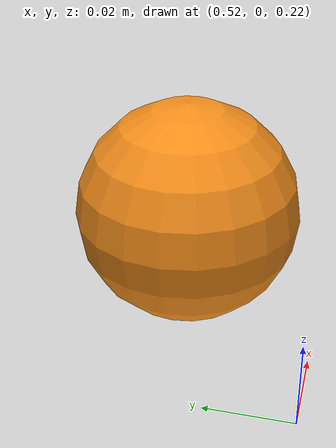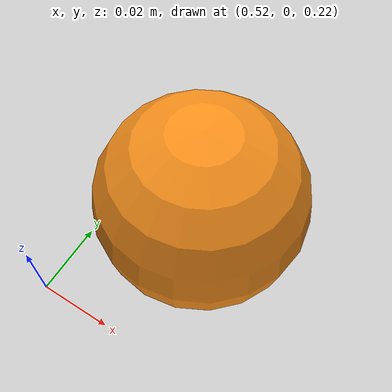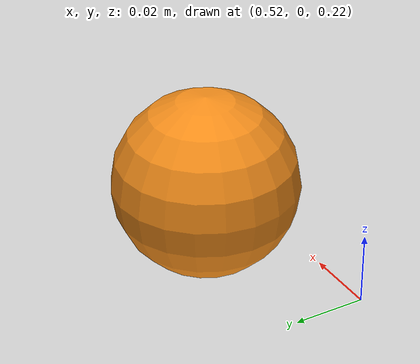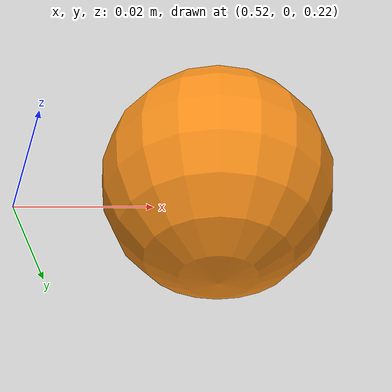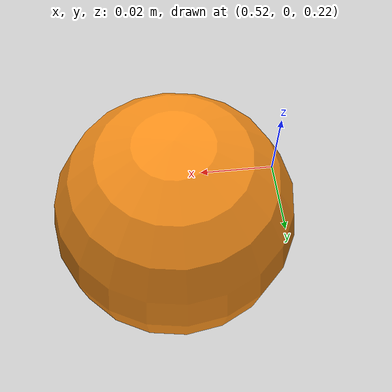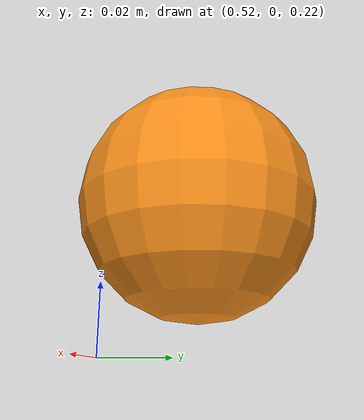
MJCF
<mujoco model="orange">
  <asset>
    <texture file="./../Environment/objects_assets/orange/orange.png" type="2d" name="tex-orange" />
    <material name="orange_fruit_mat" reflectance="0.7" texrepeat="15 15" texture="tex-orange" texuniform="true"/>
  </asset>

  <worldbody>
                  <body name="orange_fruit" pos="0.55 0.03 0.25">
                  <joint name="orange_joint" type="free" damping="0.1"/>

        <geom pos="0 0 0" size="0.025" type="sphere" mass="0.01" material="orange_fruit_mat" friction="1 1 1"/>

    </body>
  </worldbody>
</mujoco>
